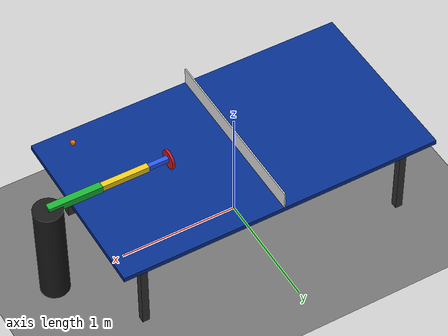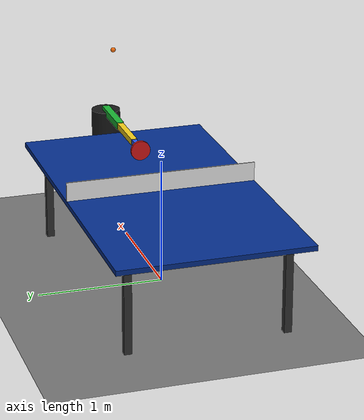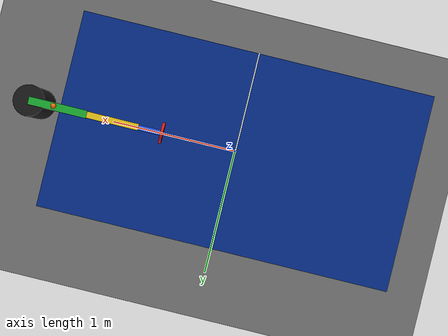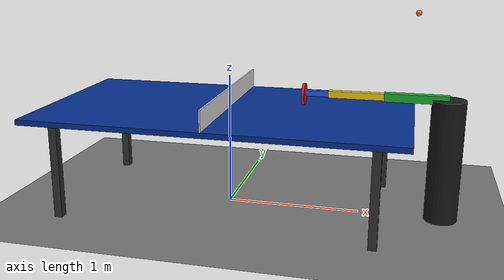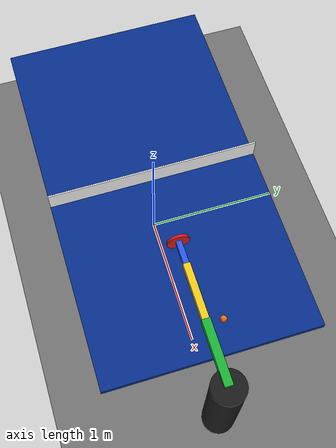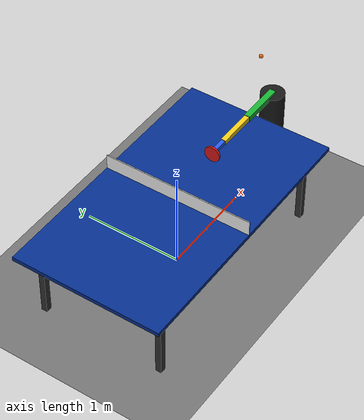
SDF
<?xml version="1.0" ?>
<sdf version="1.8">
  <world name="ping_pong_world">

    <gravity>0 0 -9.81</gravity>

    <physics name="default_physics" type="ode">
      <max_step_size>0.001</max_step_size>
      <real_time_factor>1.0</real_time_factor>
      <real_time_update_rate>1000</real_time_update_rate>
    </physics>

    <light name="sun" type="directional">
      <cast_shadows>true</cast_shadows>
      <pose>0 0 10 0 0 0</pose>
      <diffuse>0.85 0.85 0.85 1</diffuse>
      <specular>0.2 0.2 0.2 1</specular>
      <direction>-0.4 0.1 -0.9</direction>
    </light>

    <!-- Ground -->
    <model name="ground_plane">
      <static>true</static>
      <link name="link">
        <collision name="collision">
          <geometry>
            <plane>
              <normal>0 0 1</normal>
              <size>20 20</size>
            </plane>
          </geometry>
        </collision>
        <visual name="visual">
          <geometry>
            <plane>
              <normal>0 0 1</normal>
              <size>20 20</size>
            </plane>
          </geometry>
          <material>
            <ambient>0.45 0.45 0.45 1</ambient>
            <diffuse>0.45 0.45 0.45 1</diffuse>
            <specular>0.1 0.1 0.1 1</specular>
          </material>
        </visual>
      </link>
    </model>

    <!-- Ping pong table -->
    <model name="ping_pong_table">
      <static>true</static>

      <!-- Table top -->
      <link name="table_top">
        <!-- top surface at z = 0.76, thickness = 0.04 -->
        <pose>0 0 0.74 0 0 0</pose>

        <collision name="collision">
          <geometry>
            <box>
              <size>2.74 1.525 0.04</size>
            </box>
          </geometry>
          <surface>
            <contact>
              <ode>
                <kp>1e6</kp>
                <kd>10</kd>
                <max_vel>1.0</max_vel>
                <min_depth>0.0005</min_depth>
              </ode>
            </contact>
            <friction>
              <ode>
                <mu>0.25</mu>
                <mu2>0.25</mu2>
              </ode>
            </friction>
            <bounce>
              <restitution_coefficient>0.82</restitution_coefficient>
              <threshold>0.0001</threshold>
            </bounce>
          </surface>
        </collision>

        <visual name="visual">
          <geometry>
            <box>
              <size>2.74 1.525 0.04</size>
            </box>
          </geometry>
          <material>
            <ambient>0.02 0.18 0.55 1</ambient>
            <diffuse>0.02 0.18 0.55 1</diffuse>
            <specular>0.25 0.25 0.25 1</specular>
          </material>
        </visual>
      </link>

      <!-- Net -->
      <link name="net">
        <pose>0 0 0.83625 0 0 0</pose>

        <collision name="collision">
          <geometry>
            <box>
              <size>0.01 1.525 0.1525</size>
            </box>
          </geometry>
        </collision>

        <visual name="visual">
          <geometry>
            <box>
              <size>0.01 1.525 0.1525</size>
            </box>
          </geometry>
          <material>
            <ambient>0.95 0.95 0.95 1</ambient>
            <diffuse>0.95 0.95 0.95 1</diffuse>
            <specular>0.1 0.1 0.1 1</specular>
          </material>
        </visual>
      </link>

      <!-- Legs -->
      <link name="leg_1">
        <pose>1.15 0.62 0.35 0 0 0</pose>
        <collision name="collision">
          <geometry>
            <box>
              <size>0.06 0.06 0.74</size>
            </box>
          </geometry>
        </collision>
        <visual name="visual">
          <geometry>
            <box>
              <size>0.06 0.06 0.74</size>
            </box>
          </geometry>
          <material>
            <ambient>0.2 0.2 0.2 1</ambient>
            <diffuse>0.2 0.2 0.2 1</diffuse>
          </material>
        </visual>
      </link>

      <link name="leg_2">
        <pose>1.15 -0.62 0.35 0 0 0</pose>
        <collision name="collision">
          <geometry>
            <box>
              <size>0.06 0.06 0.74</size>
            </box>
          </geometry>
        </collision>
        <visual name="visual">
          <geometry>
            <box>
              <size>0.06 0.06 0.74</size>
            </box>
          </geometry>
          <material>
            <ambient>0.2 0.2 0.2 1</ambient>
            <diffuse>0.2 0.2 0.2 1</diffuse>
          </material>
        </visual>
      </link>

      <link name="leg_3">
        <pose>-1.15 0.62 0.35 0 0 0</pose>
        <collision name="collision">
          <geometry>
            <box>
              <size>0.06 0.06 0.74</size>
            </box>
          </geometry>
        </collision>
        <visual name="visual">
          <geometry>
            <box>
              <size>0.06 0.06 0.74</size>
            </box>
          </geometry>
          <material>
            <ambient>0.2 0.2 0.2 1</ambient>
            <diffuse>0.2 0.2 0.2 1</diffuse>
          </material>
        </visual>
      </link>

      <link name="leg_4">
        <pose>-1.15 -0.62 0.35 0 0 0</pose>
        <collision name="collision">
          <geometry>
            <box>
              <size>0.06 0.06 0.74</size>
            </box>
          </geometry>
        </collision>
        <visual name="visual">
          <geometry>
            <box>
              <size>0.06 0.06 0.74</size>
            </box>
          </geometry>
          <material>
            <ambient>0.2 0.2 0.2 1</ambient>
            <diffuse>0.2 0.2 0.2 1</diffuse>
          </material>
        </visual>
      </link>
    </model>

    <!-- Ball -->
    <model name="ping_pong_ball">
      <pose>1.35 0 1.50 0 0 0</pose>
      <link name="link">
        <inertial>
          <mass>0.0027</mass>
          <inertia>
            <ixx>4.32e-7</ixx>
            <iyy>4.32e-7</iyy>
            <izz>4.32e-7</izz>
          </inertia>
        </inertial>

        <collision name="collision">
          <geometry>
            <sphere>
              <radius>0.02</radius>
            </sphere>
          </geometry>
          <surface>
            <contact>
              <ode>
                <kp>1e6</kp>
                <kd>10</kd>
                <max_vel>1.0</max_vel>
                <min_depth>0.0005</min_depth>
              </ode>
            </contact>
            <friction>
              <ode>
                <mu>0.12</mu>
                <mu2>0.12</mu2>
              </ode>
            </friction>
            <bounce>
              <restitution_coefficient>0.89</restitution_coefficient>
              <threshold>0.0001</threshold>
            </bounce>
          </surface>
        </collision>

        <visual name="visual">
          <geometry>
            <sphere>
              <radius>0.02</radius>
            </sphere>
          </geometry>
          <material>
            <ambient>1 0.45 0.05 1</ambient>
            <diffuse>1 0.45 0.05 1</diffuse>
            <specular>0.25 0.25 0.25 1</specular>
          </material>
        </visual>
      </link>
    </model>

    <!-- Robot arm -->
    <model name="ping_pong_arm">
      <!-- Positioned on the right side of the table, facing toward the table -->
      <static>false</static>
      <pose>1.60 0 0 0 0 3.14159265359</pose>

      <plugin
        filename="gz-sim-joint-position-controller-system"
        name="gz::sim::systems::JointPositionController">
        <joint_name>joint0</joint_name>
        <topic>/arm/joint0/cmd_pos</topic>
        <p_gain>8.0</p_gain>
        <i_gain>0.02</i_gain>
        <d_gain>0.25</d_gain>
        <cmd_max>20</cmd_max>
        <cmd_min>-20</cmd_min>
      </plugin>

      <plugin
        filename="gz-sim-joint-position-controller-system"
        name="gz::sim::systems::JointPositionController">
        <joint_name>joint1</joint_name>
        <topic>/arm/joint1/cmd_pos</topic>
        <p_gain>8.0</p_gain>
        <i_gain>0.02</i_gain>
        <d_gain>0.25</d_gain>
        <cmd_max>20</cmd_max>
        <cmd_min>-20</cmd_min>
      </plugin>

      <plugin
        filename="gz-sim-joint-position-controller-system"
        name="gz::sim::systems::JointPositionController">
        <joint_name>joint2</joint_name>
        <topic>/arm/joint2/cmd_pos</topic>
        <p_gain>8.0</p_gain>
        <i_gain>0.02</i_gain>
        <d_gain>0.25</d_gain>
        <cmd_max>20</cmd_max>
        <cmd_min>-20</cmd_min>
      </plugin>

      <plugin
        filename="gz-sim-joint-position-controller-system"
        name="gz::sim::systems::JointPositionController">
        <joint_name>joint3</joint_name>
        <topic>/arm/joint3/cmd_pos</topic>
        <p_gain>8.0</p_gain>
        <i_gain>0.02</i_gain>
        <d_gain>0.25</d_gain>
        <cmd_max>20</cmd_max>
        <cmd_min>-20</cmd_min>
      </plugin>

      <plugin
        filename="gz-sim-joint-state-publisher-system"
        name="gz::sim::systems::JointStatePublisher">
        <topic>/arm/joint_state</topic>
        <joint_name>joint0</joint_name>
        <joint_name>joint1</joint_name>
        <joint_name>joint2</joint_name>
        <joint_name>joint3</joint_name>
      </plugin>

      <!-- Link alla base -->
      <link name="base_link">
        <pose>0 0 0 0 0 0</pose>
        <inertial>
          <pose>0 0 0.45 0 0 0</pose>
          <mass>8.0</mass>
          <inertia>
            <ixx>0.5688</ixx>
            <iyy>0.5688</iyy>
            <izz>0.0576</izz>
          </inertia>
        </inertial>

        <collision name="collision">
          <pose>0 0 0.45 0 0 0</pose>
          <geometry>
            <cylinder>
              <radius>0.12</radius>
              <length>0.90</length>
            </cylinder>
          </geometry>
        </collision>

        <visual name="visual">
          <pose>0 0 0.45 0 0 0</pose>
          <geometry>
            <cylinder>
              <radius>0.12</radius>
              <length>0.90</length>
            </cylinder>
          </geometry>
          <material>
            <ambient>0.10 0.10 0.10 1</ambient>
            <diffuse>0.10 0.10 0.10 1</diffuse>
          </material>
        </visual>
      </link>

      <joint name="joint0" type="revolute">
        <parent>world</parent>
        <child>base_link</child>
        <axis>
          <xyz>0 0 1</xyz>
          <limit>
            <lower>-3.14</lower>
            <upper>3.14</upper>
            <effort>100.0</effort>
            <velocity>2.0</velocity>
          </limit>
          <dynamics>
            <damping>0.2</damping>
            <friction>0.02</friction>
          </dynamics>
        </axis>
      </joint>

      <link name="link1">
        <pose>0 0 0.90 0 0 0</pose>
        <inertial>
          <pose>0.225 0 0 0 0 0</pose>
          <mass>0.6</mass>
          <inertia>
            <ixx>0.00036</ixx>
            <iyy>0.010305</iyy>
            <izz>0.010305</izz>
          </inertia>
        </inertial>

        <collision name="collision">
          <pose>0.225 0 0 0 0 0</pose>
          <geometry>
            <box>
              <size>0.45 0.06 0.06</size>
            </box>
          </geometry>
          <surface>
            <friction>
              <ode>
                <mu>0.2</mu>
                <mu2>0.2</mu2>
              </ode>
            </friction>
            <bounce>
              <restitution_coefficient>0.85</restitution_coefficient>
              <threshold>0.0001</threshold>
            </bounce>
          </surface>
        </collision>

        <visual name="visual">
          <pose>0.225 0 0 0 0 0</pose>
          <geometry>
            <box>
              <size>0.45 0.06 0.06</size>
            </box>
          </geometry>
          <material>
            <ambient>0.1 0.7 0.2 1</ambient>
            <diffuse>0.1 0.7 0.2 1</diffuse>
          </material>
        </visual>
      </link>

      <joint name="joint1" type="revolute">
        <parent>base_link</parent>
        <child>link1</child>
        <pose>0 0 0 0 0 0</pose>
        <axis>
          <xyz>0 1 0</xyz>
          <limit>
            <lower>-3.14</lower>
            <upper>3.14</upper>
            <effort>80.0</effort>
            <velocity>3.0</velocity>
          </limit>
          <dynamics>
            <damping>0.2</damping>
            <friction>0.02</friction>
          </dynamics>
        </axis>
      </joint>

      <!-- Elbow upper link -->
      <link name="link2">
        <!-- Link frame at joint2 -->
        <pose>0.45 0 0.90 0 0 0</pose>
        <inertial>
          <pose>0.20 0 0 0 0 0</pose>
          <mass>0.5</mass>
          <inertia>
            <ixx>0.0002083</ixx>
            <iyy>0.0067708</iyy>
            <izz>0.0067708</izz>
          </inertia>
        </inertial>

        <collision name="collision">
          <pose>0.20 0 0 0 0 0</pose>
          <geometry>
            <box>
              <size>0.40 0.05 0.05</size>
            </box>
          </geometry>
          <surface>
            <friction>
              <ode>
                <mu>0.2</mu>
                <mu2>0.2</mu2>
              </ode>
            </friction>
            <bounce>
              <restitution_coefficient>0.85</restitution_coefficient>
              <threshold>0.0001</threshold>
            </bounce>
          </surface>
        </collision>

        <visual name="visual">
          <pose>0.20 0 0 0 0 0</pose>
          <geometry>
            <box>
              <size>0.40 0.05 0.05</size>
            </box>
          </geometry>
          <material>
            <ambient>0.95 0.80 0.10 1</ambient>
            <diffuse>0.95 0.80 0.10 1</diffuse>
          </material>
        </visual>
      </link>

      <joint name="joint2" type="revolute">
        <parent>link1</parent>
        <child>link2</child>
        <pose>0 0 0 0 0 0</pose>
        <axis>
          <xyz>0 1 0</xyz>
          <limit>
            <lower>-3.14</lower>
            <upper>3.14</upper>
            <effort>60.0</effort>
            <velocity>3.5</velocity>
          </limit>
          <dynamics>
            <damping>0.15</damping>
            <friction>0.02</friction>
          </dynamics>
        </axis>
      </joint>

      <!-- Wrist link -->
      <link name="link3">
        <!-- Link frame at joint3 -->
        <pose>0.85 0 0.90 0 0 0</pose>
        <inertial>
          <pose>0.09 0 0 0 0 0</pose>
          <mass>0.25</mass>
          <inertia>
            <ixx>0.0000667</ixx>
            <iyy>0.0007083</iyy>
            <izz>0.0007083</izz>
          </inertia>
        </inertial>

        <collision name="collision">
          <pose>0.09 0 0 0 0 0</pose>
          <geometry>
            <box>
              <size>0.18 0.04 0.04</size>
            </box>
          </geometry>
          <surface>
            <friction>
              <ode>
                <mu>0.2</mu>
                <mu2>0.2</mu2>
              </ode>
            </friction>
            <bounce>
              <restitution_coefficient>0.85</restitution_coefficient>
              <threshold>0.0001</threshold>
            </bounce>
          </surface>
        </collision>

        <visual name="visual">
          <pose>0.09 0 0 0 0 0</pose>
          <geometry>
            <box>
              <size>0.18 0.04 0.04</size>
            </box>
          </geometry>
          <material>
            <ambient>0.15 0.35 0.95 1</ambient>
            <diffuse>0.15 0.35 0.95 1</diffuse>
          </material>
        </visual>
      </link>

      <joint name="joint3" type="revolute">
        <parent>link2</parent>
        <child>link3</child>
        <pose>0 0 0 0 0 0</pose>
        <axis>
          <xyz>0 1 0</xyz>
          <limit>
            <lower>-1.6</lower>
            <upper>1.6</upper>
            <effort>40.0</effort>
            <velocity>4.0</velocity>
          </limit>
          <dynamics>
            <damping>0.10</damping>
            <friction>0.01</friction>
          </dynamics>
        </axis>
      </joint>

      <link name="racket_link">
        <pose>1.03 0 0.90 0 1.57079632679 0</pose>

        <inertial>
          <pose>0.01 0 0 0 0 0</pose>
          <mass>0.18</mass>
          <inertia>
            <ixx>0.000294</ixx>
            <iyy>0.000294</iyy>
            <izz>0.000576</izz>
          </inertia>
        </inertial>

        <collision name="collision">
          <pose>0.01 0 0 0 0 0</pose>
          <geometry>
            <cylinder>
              <radius>0.08</radius>
              <length>0.02</length>
            </cylinder>
          </geometry>
          <surface>
            <contact>
              <ode>
                <kp>1e6</kp>
                <kd>10</kd>
                <max_vel>1.0</max_vel>
                <min_depth>0.0005</min_depth>
              </ode>
            </contact>
            <friction>
              <ode>
                <mu>0.9</mu>
                <mu2>0.9</mu2>
              </ode>
            </friction>
            <bounce>
              <restitution_coefficient>0.88</restitution_coefficient>
              <threshold>0.0001</threshold>
            </bounce>
          </surface>
        </collision>

        <visual name="visual">
          <pose>0.01 0 0 0 0 0</pose>
          <geometry>
            <cylinder>
              <radius>0.08</radius>
              <length>0.02</length>
            </cylinder>
          </geometry>
          <material>
            <ambient>0.85 0.10 0.10 1</ambient>
            <diffuse>0.85 0.10 0.10 1</diffuse>
            <specular>0.15 0.15 0.15 1</specular>
          </material>
        </visual>
      </link>

      <joint name="wrist_to_racket" type="fixed">
        <parent>link3</parent>
        <child>racket_link</child>
        <pose>0 0 0 0 0 0</pose>
      </joint>

    </model>

  </world>
</sdf>
